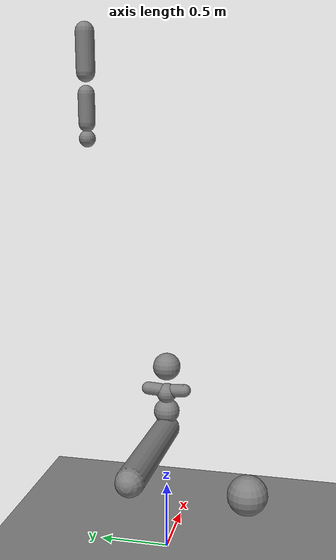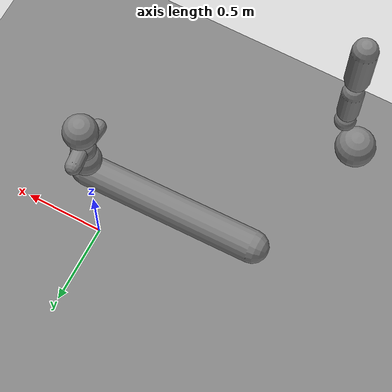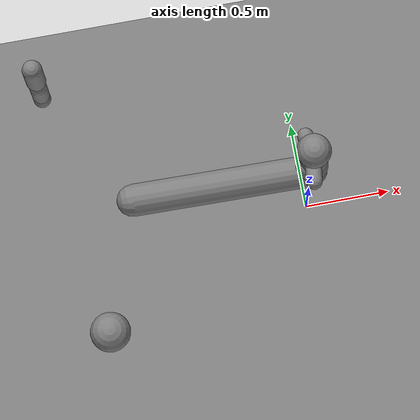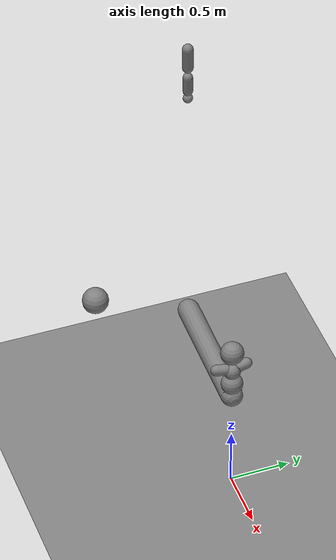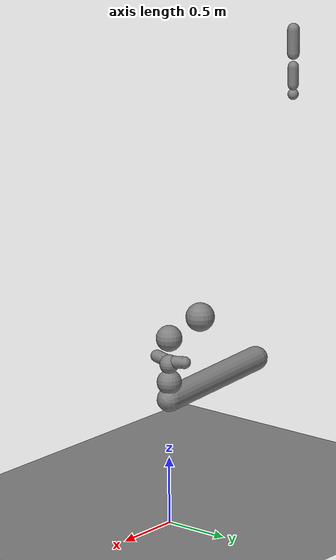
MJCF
<mujoco model="humanoid">

  <statistic extent="2" center="0 0 1"/>

  <option timestep="0.00555"/>

  <default>
    <motor ctrlrange="-1 1" ctrllimited="true"/>
    <default class="body">
      <geom type="capsule" condim="1" friction="1.0 0.05 0.05" solimp=".9 .99 .003" solref=".015 1"/>
      <joint type="hinge" damping="0.1" stiffness="5" armature=".007" limited="true" solimplimit="0 .99 .01"/>
      <site size=".04" group="3"/>
      <default class="force-torque">
        <site type="box" size=".01 .01 .02" rgba="1 0 0 1" />
      </default>
      <default class="touch">
        <site type="capsule" rgba="0 0 1 .3"/>
      </default>
    </default>
  </default>

  <worldbody>
    <geom name="floor" type="plane" conaffinity="1" size="100 100 .2"/>
    <body name="pelvis" pos="0 0 1" childclass="body">
      <freejoint name="root"/>
      <site name="root" class="force-torque"/>
      <geom name="pelvis" type="sphere" pos="0 0 0.07" size=".09" density="2226"/>
      <geom name="upper_waist" type="sphere" pos="0 0 0.205" size="0.07" density="2226"/>
      <site name="pelvis" class="touch" type="sphere" pos="0 0 0.07" size="0.091"/>
      <site name="upper_waist" class="touch" type="sphere" pos="0 0 0.205" size="0.071"/>

      <body name="tail" pos="-1.24087 -0.718302 0">
        <light name="top1" pos="0 0 2" mode="trackcom"/>
        <camera name="back1" pos="-3 0 1" xyaxes="0 -1 0 1 0 2" mode="trackcom"/>
        <camera name="side1" pos="0 -3 1" xyaxes="1 0 0 0 1 2" mode="trackcom"/>
        <geom name="tail" type="sphere" pos="0 0 0.12" size="0.11" density="1794"/>
        <site name="tail" class="touch" type="sphere" pos="0 0 0.12" size="0.111"/>
        <body name="taii2" pos="0 0 0.223894">
        </body>
      </body>

      <body name="Spine" pos="0 0 0">
        <light name="top" pos="0 0 2" mode="trackcom"/>
        <camera name="back" pos="-3 0 1" xyaxes="0 -1 0 1 0 2" mode="trackcom"/>
        <camera name="side" pos="0 -3 1" xyaxes="1 0 0 0 1 2" mode="trackcom"/>
        <joint name="abdomen_x" pos="0 0 0" axis="1 0 0" range="-60 60" stiffness="1000" damping="100" armature=".02"/>
        <joint name="abdomen_y" pos="0 0 0" axis="0 1 0" range="-60 90" stiffness="1000" damping="100" armature=".02"/>
        <joint name="abdomen_z" pos="0 0 0" axis="0 0 1" range="-50 50" stiffness="1000" damping="100" armature=".02"/>
        <geom name="Spine" fromto="0 0 -0.06 -1 0 -0" size=".09"  density="1794"/>
        <site name="Spine" class="touch" type="sphere" pos="0 0 0.12" size="0.111"/>

        <geom name="right_clavicle" fromto="-0.0060125 -0.0457775 0.2287955 -0.016835 -0.128177 0.2376182" size=".045" density="1100"/>
        <geom name="left_clavicle" fromto="-0.0060125 0.0457775 0.2287955 -0.016835 0.128177 0.2376182" size=".045" density="1100"/>

        <body name="head" pos="0 0 0.223894">
          <joint name="neck_x" axis="1 0 0" range="-50 50" stiffness="100" damping="10" armature=".01"/>
          <joint name="neck_y" axis="0 1 0" range="-40 60" stiffness="100" damping="10" armature=".01"/>
          <joint name="neck_z" axis="0 0 1" range="-45 45" stiffness="100" damping="10" armature=".01"/>
          <geom name="head" type="sphere" pos="0 0 0.175" size="0.095" density="1081"/>
          <site name="head" class="touch" pos="0 0 0.175" type="sphere" size="0.103"/>
          <camera name="egocentric" pos=".103 0 0.175" xyaxes="0 -1 0 .1 0 1" fovy="80"/>
        </body>

        <body name="right_upper_arm" pos="-1.30135 0.103306 2.49297">
          <joint name="right_shoulder_x" axis="1 0 0" range="-180 45" stiffness="400" damping="40" armature=".02"/>
          <joint name="right_shoulder_y" axis="0 1 0" range="-180 60" stiffness="400" damping="40" armature=".02"/>
          <joint name="right_shoulder_z" axis="0 0 1"  range="-90 90" stiffness="400" damping="40" armature=".02"/>
          <geom name="right_upper_arm" fromto="0 0 -0.05 0 0 -0.23" size=".045" density="982"/>
          <site name="right_upper_arm" class="touch" pos="0 0 -0.14" size="0.046 0.1" zaxis="0 0 1"/>

          <body name="right_lower_arm" pos="0 0 -0.274788">
            <joint name="right_elbow" axis="0 1 0" range="-160 0" stiffness="300" damping="30" armature=".01"/>
            <geom name="right_lower_arm" fromto="0 0 -0.0525 0 0 -0.1875" size="0.04" density="1056"/>
            <site name="right_lower_arm" class="touch" pos="0 0 -0.12" size="0.041 0.0685" zaxis="0 1 0"/>

            <body name="right_hand" pos="0 0 -0.258947">
              <geom name="right_hand" type="sphere" size=".04" density="1865"/>
              <site name="right_hand" class="touch" type="sphere" size=".041"/>
            </body>
          </body>
        </body>
      </body>
    </body>
  </worldbody>

  <actuator>
  </actuator>

  <sensor>
  </sensor>

</mujoco>
